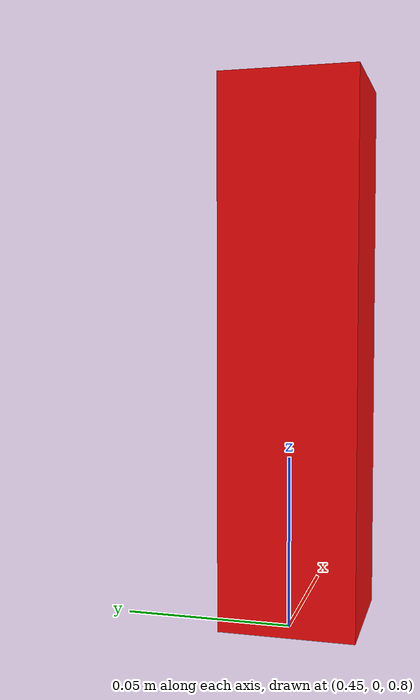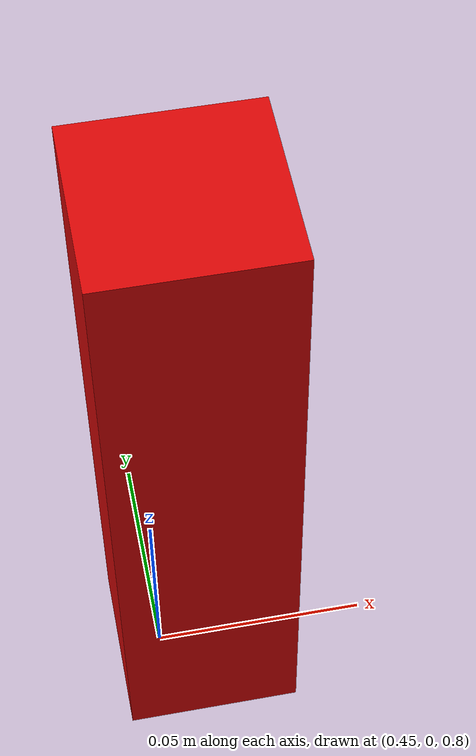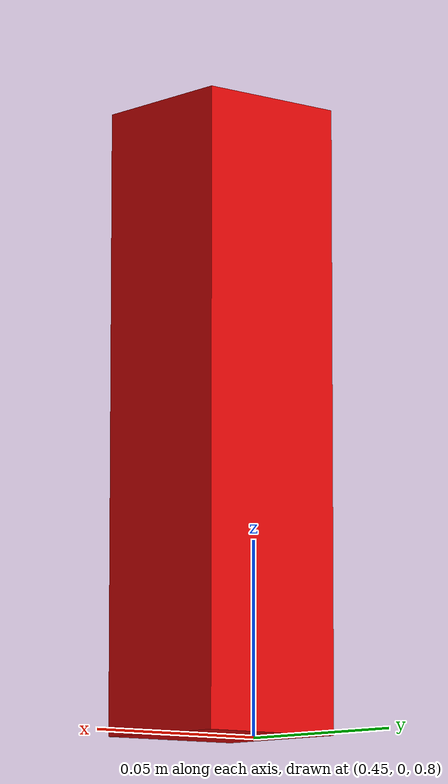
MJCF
<?xml version="1.0" encoding="utf-8"?>
<mujoco>
  <worldbody>
    <!-- A free-standing 4 x 4 x 16 cm pillar; only the test wrapper loads it.
         Bottom z=0.80 m. It can move or topple when hit, as in the older scene. -->
    <body name="dynamic_pillar" pos="0.46 -0.001 0.88">
      <freejoint name="pillar_joint" />
      <inertial pos="0 0 0" mass="0.2" diaginertia="0.000453333333 0.000453333333 0.000053333333" />
      <geom name="pillar_geom" type="box" size="0.02 0.02 0.08"
            rgba="0.85 0.025 0.025 1" contype="1" conaffinity="1023"
            friction="1 0.05 0.0001" />
    </body>
  </worldbody>
</mujoco>
